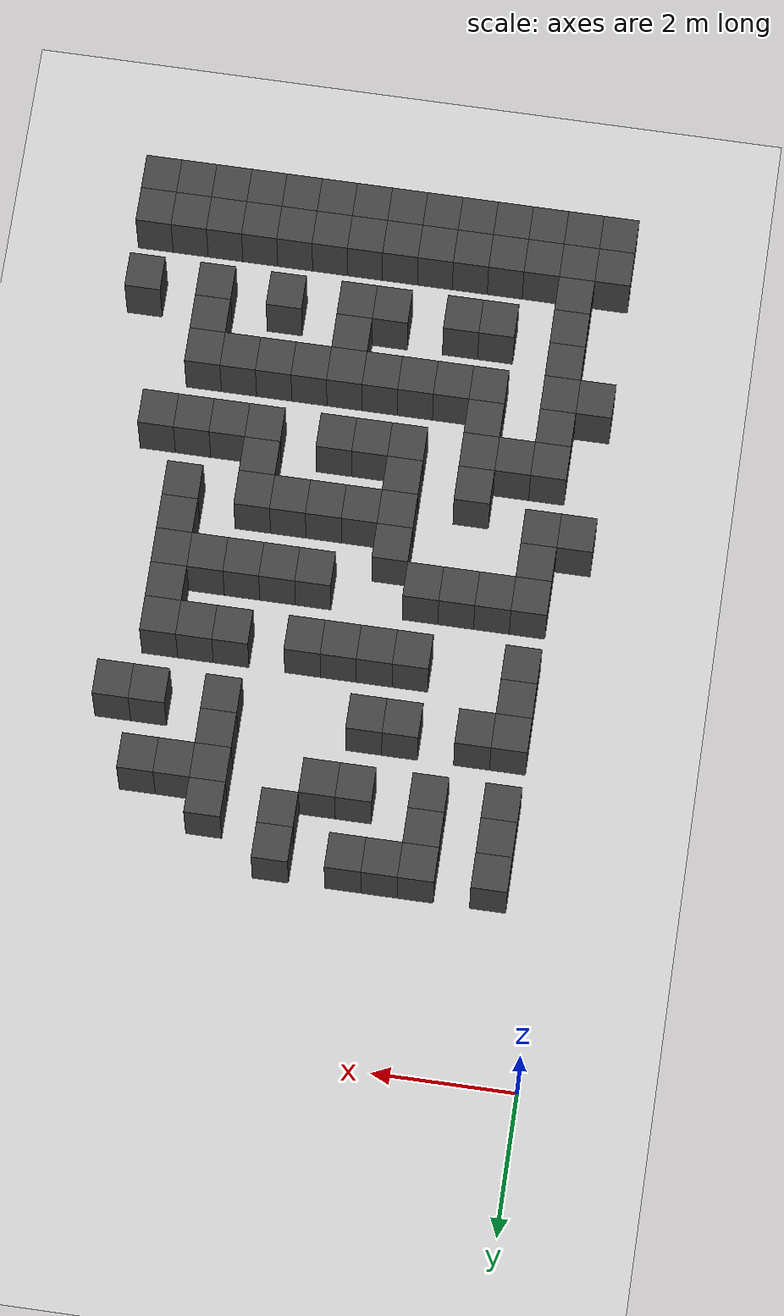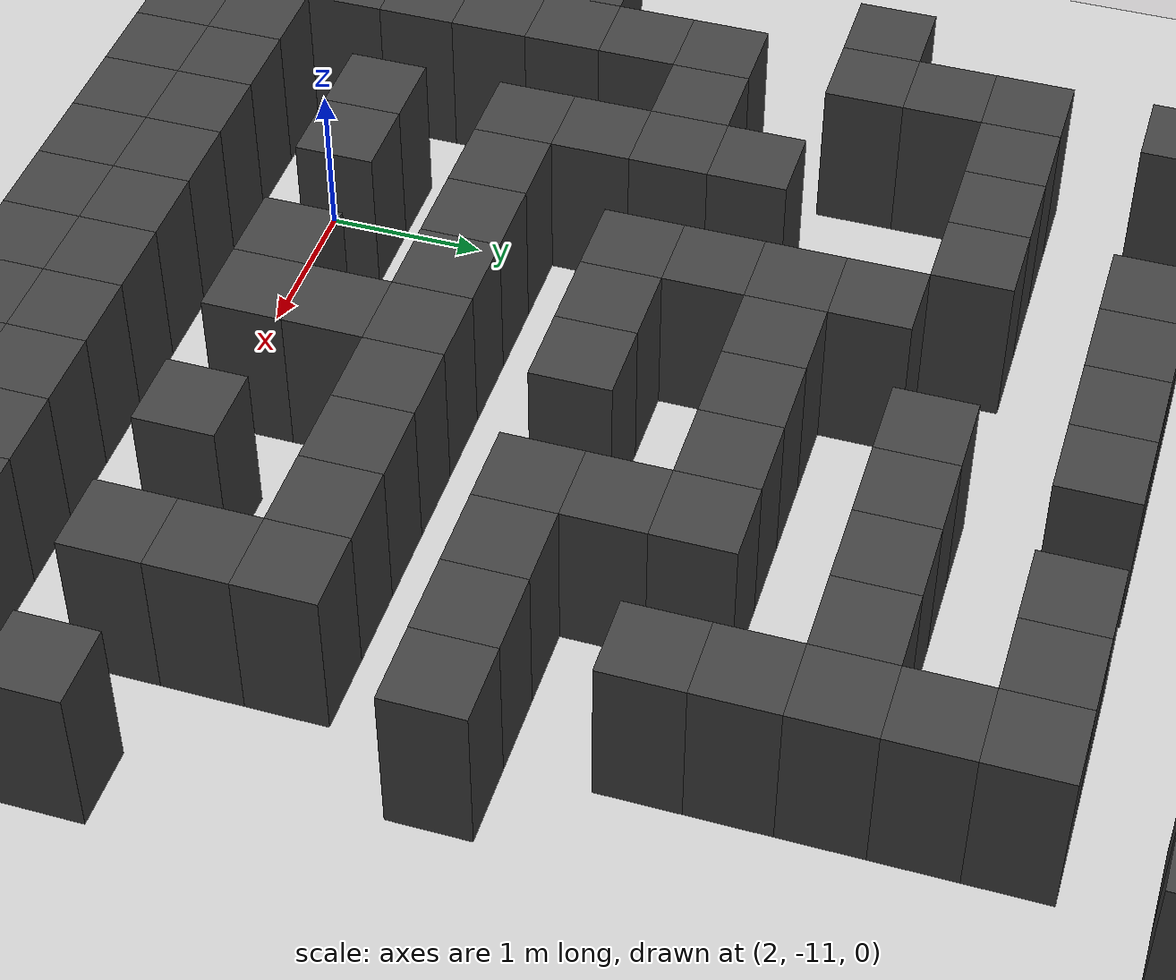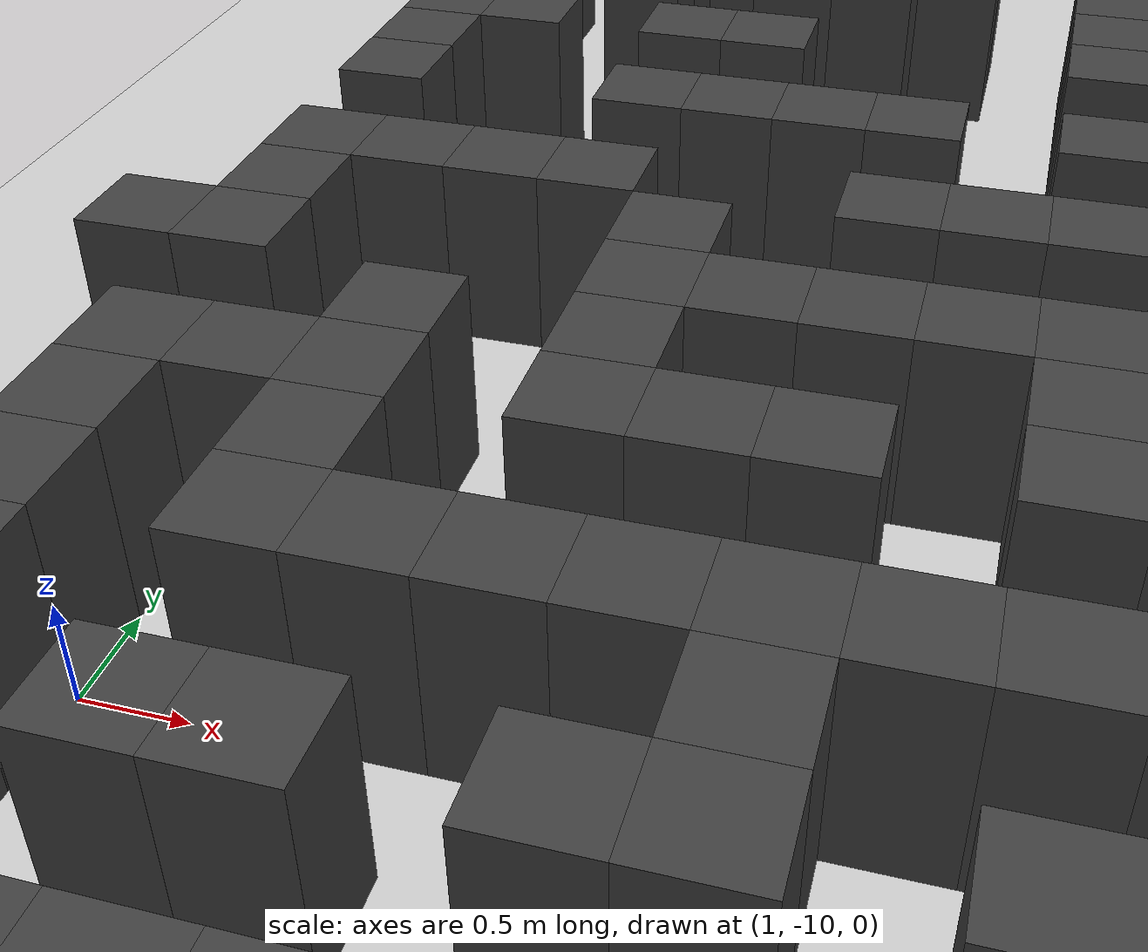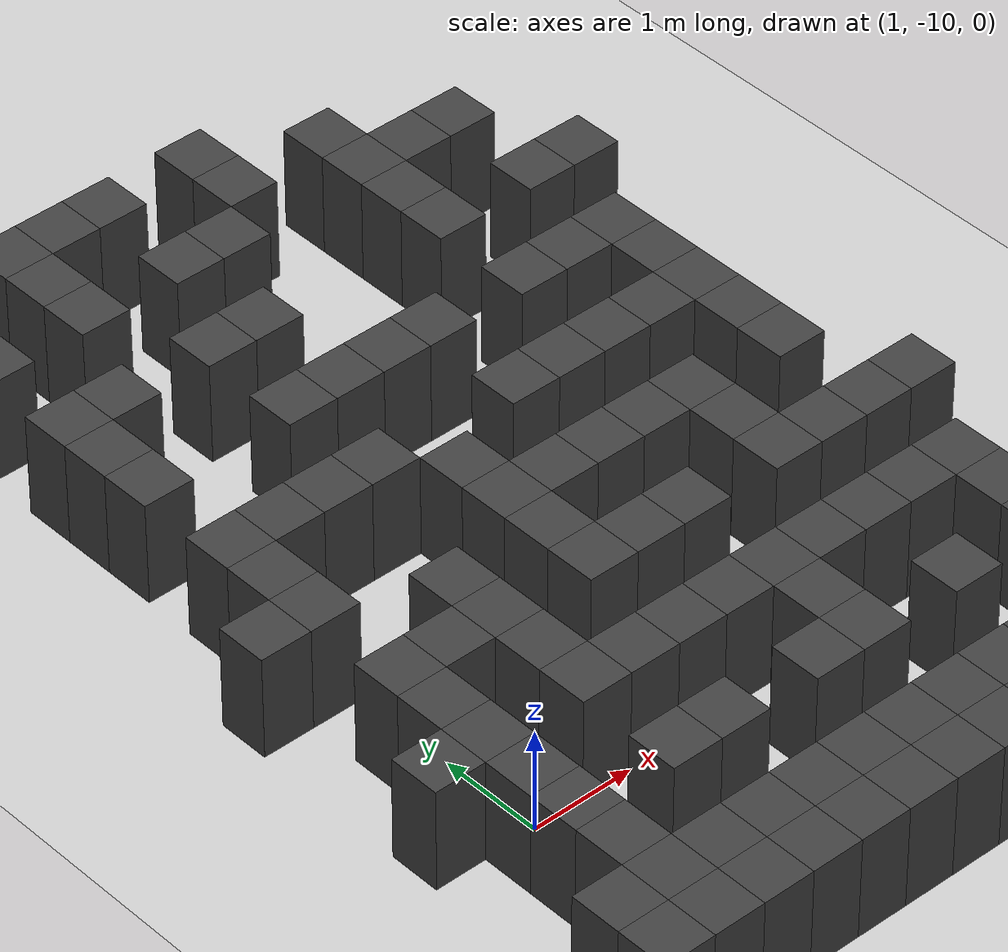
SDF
<sdf version="1.7">
 <world name="map_15168">
  <model name="ground_plane">
   <static>true</static>
   <link name="link">
    <collision name="collision">
     <geometry><plane><normal>0 0 1</normal><size>200 200</size></plane></geometry>
    </collision>
    <visual name="visual">
     <geometry><plane><normal>0 0 1</normal><size>200 200</size></plane></geometry>
     <material><ambient>0.8 0.8 0.8 1</ambient><diffuse>0.8 0.8 0.8 1</diffuse></material>
    </visual>
   </link>
  </model>
  <model name="maze_environment">
   <static>true</static>
   <link name="wall_719">
    <pose>0.750 -2.750 0.500 0 0 0</pose>
    <collision name="col"><geometry><box><size>0.5 0.5 1.0</size></box></geometry></collision>
    <visual name="vis">
     <geometry><box><size>0.5 0.5 1.0</size></box></geometry>
     <material><ambient>0.15 0.15 0.15 1</ambient><diffuse>0.25 0.25 0.25 1</diffuse></material>
    </visual>
   </link>
   <link name="wall_720">
    <pose>1.750 -2.750 0.500 0 0 0</pose>
    <collision name="col"><geometry><box><size>0.5 0.5 1.0</size></box></geometry></collision>
    <visual name="vis">
     <geometry><box><size>0.5 0.5 1.0</size></box></geometry>
     <material><ambient>0.15 0.15 0.15 1</ambient><diffuse>0.25 0.25 0.25 1</diffuse></material>
    </visual>
   </link>
   <link name="wall_721">
    <pose>2.250 -2.750 0.500 0 0 0</pose>
    <collision name="col"><geometry><box><size>0.5 0.5 1.0</size></box></geometry></collision>
    <visual name="vis">
     <geometry><box><size>0.5 0.5 1.0</size></box></geometry>
     <material><ambient>0.15 0.15 0.15 1</ambient><diffuse>0.25 0.25 0.25 1</diffuse></material>
    </visual>
   </link>
   <link name="wall_722">
    <pose>2.750 -2.750 0.500 0 0 0</pose>
    <collision name="col"><geometry><box><size>0.5 0.5 1.0</size></box></geometry></collision>
    <visual name="vis">
     <geometry><box><size>0.5 0.5 1.0</size></box></geometry>
     <material><ambient>0.15 0.15 0.15 1</ambient><diffuse>0.25 0.25 0.25 1</diffuse></material>
    </visual>
   </link>
   <link name="wall_723">
    <pose>3.750 -2.750 0.500 0 0 0</pose>
    <collision name="col"><geometry><box><size>0.5 0.5 1.0</size></box></geometry></collision>
    <visual name="vis">
     <geometry><box><size>0.5 0.5 1.0</size></box></geometry>
     <material><ambient>0.15 0.15 0.15 1</ambient><diffuse>0.25 0.25 0.25 1</diffuse></material>
    </visual>
   </link>
   <link name="wall_739">
    <pose>0.750 -3.250 0.500 0 0 0</pose>
    <collision name="col"><geometry><box><size>0.5 0.5 1.0</size></box></geometry></collision>
    <visual name="vis">
     <geometry><box><size>0.5 0.5 1.0</size></box></geometry>
     <material><ambient>0.15 0.15 0.15 1</ambient><diffuse>0.25 0.25 0.25 1</diffuse></material>
    </visual>
   </link>
   <link name="wall_740">
    <pose>1.750 -3.250 0.500 0 0 0</pose>
    <collision name="col"><geometry><box><size>0.5 0.5 1.0</size></box></geometry></collision>
    <visual name="vis">
     <geometry><box><size>0.5 0.5 1.0</size></box></geometry>
     <material><ambient>0.15 0.15 0.15 1</ambient><diffuse>0.25 0.25 0.25 1</diffuse></material>
    </visual>
   </link>
   <link name="wall_741">
    <pose>3.750 -3.250 0.500 0 0 0</pose>
    <collision name="col"><geometry><box><size>0.5 0.5 1.0</size></box></geometry></collision>
    <visual name="vis">
     <geometry><box><size>0.5 0.5 1.0</size></box></geometry>
     <material><ambient>0.15 0.15 0.15 1</ambient><diffuse>0.25 0.25 0.25 1</diffuse></material>
    </visual>
   </link>
   <link name="wall_742">
    <pose>4.750 -3.250 0.500 0 0 0</pose>
    <collision name="col"><geometry><box><size>0.5 0.5 1.0</size></box></geometry></collision>
    <visual name="vis">
     <geometry><box><size>0.5 0.5 1.0</size></box></geometry>
     <material><ambient>0.15 0.15 0.15 1</ambient><diffuse>0.25 0.25 0.25 1</diffuse></material>
    </visual>
   </link>
   <link name="wall_760">
    <pose>0.750 -3.750 0.500 0 0 0</pose>
    <collision name="col"><geometry><box><size>0.5 0.5 1.0</size></box></geometry></collision>
    <visual name="vis">
     <geometry><box><size>0.5 0.5 1.0</size></box></geometry>
     <material><ambient>0.15 0.15 0.15 1</ambient><diffuse>0.25 0.25 0.25 1</diffuse></material>
    </visual>
   </link>
   <link name="wall_761">
    <pose>1.750 -3.750 0.500 0 0 0</pose>
    <collision name="col"><geometry><box><size>0.5 0.5 1.0</size></box></geometry></collision>
    <visual name="vis">
     <geometry><box><size>0.5 0.5 1.0</size></box></geometry>
     <material><ambient>0.15 0.15 0.15 1</ambient><diffuse>0.25 0.25 0.25 1</diffuse></material>
    </visual>
   </link>
   <link name="wall_762">
    <pose>2.750 -3.750 0.500 0 0 0</pose>
    <collision name="col"><geometry><box><size>0.5 0.5 1.0</size></box></geometry></collision>
    <visual name="vis">
     <geometry><box><size>0.5 0.5 1.0</size></box></geometry>
     <material><ambient>0.15 0.15 0.15 1</ambient><diffuse>0.25 0.25 0.25 1</diffuse></material>
    </visual>
   </link>
   <link name="wall_763">
    <pose>3.250 -3.750 0.500 0 0 0</pose>
    <collision name="col"><geometry><box><size>0.5 0.5 1.0</size></box></geometry></collision>
    <visual name="vis">
     <geometry><box><size>0.5 0.5 1.0</size></box></geometry>
     <material><ambient>0.15 0.15 0.15 1</ambient><diffuse>0.25 0.25 0.25 1</diffuse></material>
    </visual>
   </link>
   <link name="wall_764">
    <pose>4.750 -3.750 0.500 0 0 0</pose>
    <collision name="col"><geometry><box><size>0.5 0.5 1.0</size></box></geometry></collision>
    <visual name="vis">
     <geometry><box><size>0.5 0.5 1.0</size></box></geometry>
     <material><ambient>0.15 0.15 0.15 1</ambient><diffuse>0.25 0.25 0.25 1</diffuse></material>
    </visual>
   </link>
   <link name="wall_765">
    <pose>5.250 -3.750 0.500 0 0 0</pose>
    <collision name="col"><geometry><box><size>0.5 0.5 1.0</size></box></geometry></collision>
    <visual name="vis">
     <geometry><box><size>0.5 0.5 1.0</size></box></geometry>
     <material><ambient>0.15 0.15 0.15 1</ambient><diffuse>0.25 0.25 0.25 1</diffuse></material>
    </visual>
   </link>
   <link name="wall_766">
    <pose>5.750 -3.750 0.500 0 0 0</pose>
    <collision name="col"><geometry><box><size>0.5 0.5 1.0</size></box></geometry></collision>
    <visual name="vis">
     <geometry><box><size>0.5 0.5 1.0</size></box></geometry>
     <material><ambient>0.15 0.15 0.15 1</ambient><diffuse>0.25 0.25 0.25 1</diffuse></material>
    </visual>
   </link>
   <link name="wall_779">
    <pose>4.750 -4.250 0.500 0 0 0</pose>
    <collision name="col"><geometry><box><size>0.5 0.5 1.0</size></box></geometry></collision>
    <visual name="vis">
     <geometry><box><size>0.5 0.5 1.0</size></box></geometry>
     <material><ambient>0.15 0.15 0.15 1</ambient><diffuse>0.25 0.25 0.25 1</diffuse></material>
    </visual>
   </link>
   <link name="wall_802">
    <pose>0.750 -4.750 0.500 0 0 0</pose>
    <collision name="col"><geometry><box><size>0.5 0.5 1.0</size></box></geometry></collision>
    <visual name="vis">
     <geometry><box><size>0.5 0.5 1.0</size></box></geometry>
     <material><ambient>0.15 0.15 0.15 1</ambient><diffuse>0.25 0.25 0.25 1</diffuse></material>
    </visual>
   </link>
   <link name="wall_803">
    <pose>1.250 -4.750 0.500 0 0 0</pose>
    <collision name="col"><geometry><box><size>0.5 0.5 1.0</size></box></geometry></collision>
    <visual name="vis">
     <geometry><box><size>0.5 0.5 1.0</size></box></geometry>
     <material><ambient>0.15 0.15 0.15 1</ambient><diffuse>0.25 0.25 0.25 1</diffuse></material>
    </visual>
   </link>
   <link name="wall_804">
    <pose>2.250 -4.750 0.500 0 0 0</pose>
    <collision name="col"><geometry><box><size>0.5 0.5 1.0</size></box></geometry></collision>
    <visual name="vis">
     <geometry><box><size>0.5 0.5 1.0</size></box></geometry>
     <material><ambient>0.15 0.15 0.15 1</ambient><diffuse>0.25 0.25 0.25 1</diffuse></material>
    </visual>
   </link>
   <link name="wall_805">
    <pose>2.750 -4.750 0.500 0 0 0</pose>
    <collision name="col"><geometry><box><size>0.5 0.5 1.0</size></box></geometry></collision>
    <visual name="vis">
     <geometry><box><size>0.5 0.5 1.0</size></box></geometry>
     <material><ambient>0.15 0.15 0.15 1</ambient><diffuse>0.25 0.25 0.25 1</diffuse></material>
    </visual>
   </link>
   <link name="wall_806">
    <pose>4.750 -4.750 0.500 0 0 0</pose>
    <collision name="col"><geometry><box><size>0.5 0.5 1.0</size></box></geometry></collision>
    <visual name="vis">
     <geometry><box><size>0.5 0.5 1.0</size></box></geometry>
     <material><ambient>0.15 0.15 0.15 1</ambient><diffuse>0.25 0.25 0.25 1</diffuse></material>
    </visual>
   </link>
   <link name="wall_807">
    <pose>5.750 -4.750 0.500 0 0 0</pose>
    <collision name="col"><geometry><box><size>0.5 0.5 1.0</size></box></geometry></collision>
    <visual name="vis">
     <geometry><box><size>0.5 0.5 1.0</size></box></geometry>
     <material><ambient>0.15 0.15 0.15 1</ambient><diffuse>0.25 0.25 0.25 1</diffuse></material>
    </visual>
   </link>
   <link name="wall_808">
    <pose>6.250 -4.750 0.500 0 0 0</pose>
    <collision name="col"><geometry><box><size>0.5 0.5 1.0</size></box></geometry></collision>
    <visual name="vis">
     <geometry><box><size>0.5 0.5 1.0</size></box></geometry>
     <material><ambient>0.15 0.15 0.15 1</ambient><diffuse>0.25 0.25 0.25 1</diffuse></material>
    </visual>
   </link>
   <link name="wall_823">
    <pose>0.750 -5.250 0.500 0 0 0</pose>
    <collision name="col"><geometry><box><size>0.5 0.5 1.0</size></box></geometry></collision>
    <visual name="vis">
     <geometry><box><size>0.5 0.5 1.0</size></box></geometry>
     <material><ambient>0.15 0.15 0.15 1</ambient><diffuse>0.25 0.25 0.25 1</diffuse></material>
    </visual>
   </link>
   <link name="wall_847">
    <pose>0.750 -5.750 0.500 0 0 0</pose>
    <collision name="col"><geometry><box><size>0.5 0.5 1.0</size></box></geometry></collision>
    <visual name="vis">
     <geometry><box><size>0.5 0.5 1.0</size></box></geometry>
     <material><ambient>0.15 0.15 0.15 1</ambient><diffuse>0.25 0.25 0.25 1</diffuse></material>
    </visual>
   </link>
   <link name="wall_848">
    <pose>2.250 -5.750 0.500 0 0 0</pose>
    <collision name="col"><geometry><box><size>0.5 0.5 1.0</size></box></geometry></collision>
    <visual name="vis">
     <geometry><box><size>0.5 0.5 1.0</size></box></geometry>
     <material><ambient>0.15 0.15 0.15 1</ambient><diffuse>0.25 0.25 0.25 1</diffuse></material>
    </visual>
   </link>
   <link name="wall_849">
    <pose>2.750 -5.750 0.500 0 0 0</pose>
    <collision name="col"><geometry><box><size>0.5 0.5 1.0</size></box></geometry></collision>
    <visual name="vis">
     <geometry><box><size>0.5 0.5 1.0</size></box></geometry>
     <material><ambient>0.15 0.15 0.15 1</ambient><diffuse>0.25 0.25 0.25 1</diffuse></material>
    </visual>
   </link>
   <link name="wall_850">
    <pose>3.250 -5.750 0.500 0 0 0</pose>
    <collision name="col"><geometry><box><size>0.5 0.5 1.0</size></box></geometry></collision>
    <visual name="vis">
     <geometry><box><size>0.5 0.5 1.0</size></box></geometry>
     <material><ambient>0.15 0.15 0.15 1</ambient><diffuse>0.25 0.25 0.25 1</diffuse></material>
    </visual>
   </link>
   <link name="wall_851">
    <pose>3.750 -5.750 0.500 0 0 0</pose>
    <collision name="col"><geometry><box><size>0.5 0.5 1.0</size></box></geometry></collision>
    <visual name="vis">
     <geometry><box><size>0.5 0.5 1.0</size></box></geometry>
     <material><ambient>0.15 0.15 0.15 1</ambient><diffuse>0.25 0.25 0.25 1</diffuse></material>
    </visual>
   </link>
   <link name="wall_852">
    <pose>4.750 -5.750 0.500 0 0 0</pose>
    <collision name="col"><geometry><box><size>0.5 0.5 1.0</size></box></geometry></collision>
    <visual name="vis">
     <geometry><box><size>0.5 0.5 1.0</size></box></geometry>
     <material><ambient>0.15 0.15 0.15 1</ambient><diffuse>0.25 0.25 0.25 1</diffuse></material>
    </visual>
   </link>
   <link name="wall_853">
    <pose>5.250 -5.750 0.500 0 0 0</pose>
    <collision name="col"><geometry><box><size>0.5 0.5 1.0</size></box></geometry></collision>
    <visual name="vis">
     <geometry><box><size>0.5 0.5 1.0</size></box></geometry>
     <material><ambient>0.15 0.15 0.15 1</ambient><diffuse>0.25 0.25 0.25 1</diffuse></material>
    </visual>
   </link>
   <link name="wall_854">
    <pose>5.750 -5.750 0.500 0 0 0</pose>
    <collision name="col"><geometry><box><size>0.5 0.5 1.0</size></box></geometry></collision>
    <visual name="vis">
     <geometry><box><size>0.5 0.5 1.0</size></box></geometry>
     <material><ambient>0.15 0.15 0.15 1</ambient><diffuse>0.25 0.25 0.25 1</diffuse></material>
    </visual>
   </link>
   <link name="wall_868">
    <pose>5.750 -6.250 0.500 0 0 0</pose>
    <collision name="col"><geometry><box><size>0.5 0.5 1.0</size></box></geometry></collision>
    <visual name="vis">
     <geometry><box><size>0.5 0.5 1.0</size></box></geometry>
     <material><ambient>0.15 0.15 0.15 1</ambient><diffuse>0.25 0.25 0.25 1</diffuse></material>
    </visual>
   </link>
   <link name="wall_894">
    <pose>0.750 -6.750 0.500 0 0 0</pose>
    <collision name="col"><geometry><box><size>0.5 0.5 1.0</size></box></geometry></collision>
    <visual name="vis">
     <geometry><box><size>0.5 0.5 1.0</size></box></geometry>
     <material><ambient>0.15 0.15 0.15 1</ambient><diffuse>0.25 0.25 0.25 1</diffuse></material>
    </visual>
   </link>
   <link name="wall_895">
    <pose>1.250 -6.750 0.500 0 0 0</pose>
    <collision name="col"><geometry><box><size>0.5 0.5 1.0</size></box></geometry></collision>
    <visual name="vis">
     <geometry><box><size>0.5 0.5 1.0</size></box></geometry>
     <material><ambient>0.15 0.15 0.15 1</ambient><diffuse>0.25 0.25 0.25 1</diffuse></material>
    </visual>
   </link>
   <link name="wall_896">
    <pose>1.750 -6.750 0.500 0 0 0</pose>
    <collision name="col"><geometry><box><size>0.5 0.5 1.0</size></box></geometry></collision>
    <visual name="vis">
     <geometry><box><size>0.5 0.5 1.0</size></box></geometry>
     <material><ambient>0.15 0.15 0.15 1</ambient><diffuse>0.25 0.25 0.25 1</diffuse></material>
    </visual>
   </link>
   <link name="wall_897">
    <pose>2.250 -6.750 0.500 0 0 0</pose>
    <collision name="col"><geometry><box><size>0.5 0.5 1.0</size></box></geometry></collision>
    <visual name="vis">
     <geometry><box><size>0.5 0.5 1.0</size></box></geometry>
     <material><ambient>0.15 0.15 0.15 1</ambient><diffuse>0.25 0.25 0.25 1</diffuse></material>
    </visual>
   </link>
   <link name="wall_898">
    <pose>3.750 -6.750 0.500 0 0 0</pose>
    <collision name="col"><geometry><box><size>0.5 0.5 1.0</size></box></geometry></collision>
    <visual name="vis">
     <geometry><box><size>0.5 0.5 1.0</size></box></geometry>
     <material><ambient>0.15 0.15 0.15 1</ambient><diffuse>0.25 0.25 0.25 1</diffuse></material>
    </visual>
   </link>
   <link name="wall_899">
    <pose>4.250 -6.750 0.500 0 0 0</pose>
    <collision name="col"><geometry><box><size>0.5 0.5 1.0</size></box></geometry></collision>
    <visual name="vis">
     <geometry><box><size>0.5 0.5 1.0</size></box></geometry>
     <material><ambient>0.15 0.15 0.15 1</ambient><diffuse>0.25 0.25 0.25 1</diffuse></material>
    </visual>
   </link>
   <link name="wall_900">
    <pose>4.750 -6.750 0.500 0 0 0</pose>
    <collision name="col"><geometry><box><size>0.5 0.5 1.0</size></box></geometry></collision>
    <visual name="vis">
     <geometry><box><size>0.5 0.5 1.0</size></box></geometry>
     <material><ambient>0.15 0.15 0.15 1</ambient><diffuse>0.25 0.25 0.25 1</diffuse></material>
    </visual>
   </link>
   <link name="wall_901">
    <pose>5.250 -6.750 0.500 0 0 0</pose>
    <collision name="col"><geometry><box><size>0.5 0.5 1.0</size></box></geometry></collision>
    <visual name="vis">
     <geometry><box><size>0.5 0.5 1.0</size></box></geometry>
     <material><ambient>0.15 0.15 0.15 1</ambient><diffuse>0.25 0.25 0.25 1</diffuse></material>
    </visual>
   </link>
   <link name="wall_902">
    <pose>5.750 -6.750 0.500 0 0 0</pose>
    <collision name="col"><geometry><box><size>0.5 0.5 1.0</size></box></geometry></collision>
    <visual name="vis">
     <geometry><box><size>0.5 0.5 1.0</size></box></geometry>
     <material><ambient>0.15 0.15 0.15 1</ambient><diffuse>0.25 0.25 0.25 1</diffuse></material>
    </visual>
   </link>
   <link name="wall_917">
    <pose>0.750 -7.250 0.500 0 0 0</pose>
    <collision name="col"><geometry><box><size>0.5 0.5 1.0</size></box></geometry></collision>
    <visual name="vis">
     <geometry><box><size>0.5 0.5 1.0</size></box></geometry>
     <material><ambient>0.15 0.15 0.15 1</ambient><diffuse>0.25 0.25 0.25 1</diffuse></material>
    </visual>
   </link>
   <link name="wall_918">
    <pose>2.750 -7.250 0.500 0 0 0</pose>
    <collision name="col"><geometry><box><size>0.5 0.5 1.0</size></box></geometry></collision>
    <visual name="vis">
     <geometry><box><size>0.5 0.5 1.0</size></box></geometry>
     <material><ambient>0.15 0.15 0.15 1</ambient><diffuse>0.25 0.25 0.25 1</diffuse></material>
    </visual>
   </link>
   <link name="wall_919">
    <pose>5.750 -7.250 0.500 0 0 0</pose>
    <collision name="col"><geometry><box><size>0.5 0.5 1.0</size></box></geometry></collision>
    <visual name="vis">
     <geometry><box><size>0.5 0.5 1.0</size></box></geometry>
     <material><ambient>0.15 0.15 0.15 1</ambient><diffuse>0.25 0.25 0.25 1</diffuse></material>
    </visual>
   </link>
   <link name="wall_938">
    <pose>0.250 -7.750 0.500 0 0 0</pose>
    <collision name="col"><geometry><box><size>0.5 0.5 1.0</size></box></geometry></collision>
    <visual name="vis">
     <geometry><box><size>0.5 0.5 1.0</size></box></geometry>
     <material><ambient>0.15 0.15 0.15 1</ambient><diffuse>0.25 0.25 0.25 1</diffuse></material>
    </visual>
   </link>
   <link name="wall_939">
    <pose>0.750 -7.750 0.500 0 0 0</pose>
    <collision name="col"><geometry><box><size>0.5 0.5 1.0</size></box></geometry></collision>
    <visual name="vis">
     <geometry><box><size>0.5 0.5 1.0</size></box></geometry>
     <material><ambient>0.15 0.15 0.15 1</ambient><diffuse>0.25 0.25 0.25 1</diffuse></material>
    </visual>
   </link>
   <link name="wall_940">
    <pose>2.750 -7.750 0.500 0 0 0</pose>
    <collision name="col"><geometry><box><size>0.5 0.5 1.0</size></box></geometry></collision>
    <visual name="vis">
     <geometry><box><size>0.5 0.5 1.0</size></box></geometry>
     <material><ambient>0.15 0.15 0.15 1</ambient><diffuse>0.25 0.25 0.25 1</diffuse></material>
    </visual>
   </link>
   <link name="wall_941">
    <pose>3.250 -7.750 0.500 0 0 0</pose>
    <collision name="col"><geometry><box><size>0.5 0.5 1.0</size></box></geometry></collision>
    <visual name="vis">
     <geometry><box><size>0.5 0.5 1.0</size></box></geometry>
     <material><ambient>0.15 0.15 0.15 1</ambient><diffuse>0.25 0.25 0.25 1</diffuse></material>
    </visual>
   </link>
   <link name="wall_942">
    <pose>3.750 -7.750 0.500 0 0 0</pose>
    <collision name="col"><geometry><box><size>0.5 0.5 1.0</size></box></geometry></collision>
    <visual name="vis">
     <geometry><box><size>0.5 0.5 1.0</size></box></geometry>
     <material><ambient>0.15 0.15 0.15 1</ambient><diffuse>0.25 0.25 0.25 1</diffuse></material>
    </visual>
   </link>
   <link name="wall_943">
    <pose>4.250 -7.750 0.500 0 0 0</pose>
    <collision name="col"><geometry><box><size>0.5 0.5 1.0</size></box></geometry></collision>
    <visual name="vis">
     <geometry><box><size>0.5 0.5 1.0</size></box></geometry>
     <material><ambient>0.15 0.15 0.15 1</ambient><diffuse>0.25 0.25 0.25 1</diffuse></material>
    </visual>
   </link>
   <link name="wall_944">
    <pose>4.750 -7.750 0.500 0 0 0</pose>
    <collision name="col"><geometry><box><size>0.5 0.5 1.0</size></box></geometry></collision>
    <visual name="vis">
     <geometry><box><size>0.5 0.5 1.0</size></box></geometry>
     <material><ambient>0.15 0.15 0.15 1</ambient><diffuse>0.25 0.25 0.25 1</diffuse></material>
    </visual>
   </link>
   <link name="wall_945">
    <pose>5.750 -7.750 0.500 0 0 0</pose>
    <collision name="col"><geometry><box><size>0.5 0.5 1.0</size></box></geometry></collision>
    <visual name="vis">
     <geometry><box><size>0.5 0.5 1.0</size></box></geometry>
     <material><ambient>0.15 0.15 0.15 1</ambient><diffuse>0.25 0.25 0.25 1</diffuse></material>
    </visual>
   </link>
   <link name="wall_961">
    <pose>1.750 -8.250 0.500 0 0 0</pose>
    <collision name="col"><geometry><box><size>0.5 0.5 1.0</size></box></geometry></collision>
    <visual name="vis">
     <geometry><box><size>0.5 0.5 1.0</size></box></geometry>
     <material><ambient>0.15 0.15 0.15 1</ambient><diffuse>0.25 0.25 0.25 1</diffuse></material>
    </visual>
   </link>
   <link name="wall_962">
    <pose>2.750 -8.250 0.500 0 0 0</pose>
    <collision name="col"><geometry><box><size>0.5 0.5 1.0</size></box></geometry></collision>
    <visual name="vis">
     <geometry><box><size>0.5 0.5 1.0</size></box></geometry>
     <material><ambient>0.15 0.15 0.15 1</ambient><diffuse>0.25 0.25 0.25 1</diffuse></material>
    </visual>
   </link>
   <link name="wall_963">
    <pose>4.750 -8.250 0.500 0 0 0</pose>
    <collision name="col"><geometry><box><size>0.5 0.5 1.0</size></box></geometry></collision>
    <visual name="vis">
     <geometry><box><size>0.5 0.5 1.0</size></box></geometry>
     <material><ambient>0.15 0.15 0.15 1</ambient><diffuse>0.25 0.25 0.25 1</diffuse></material>
    </visual>
   </link>
   <link name="wall_986">
    <pose>0.750 -8.750 0.500 0 0 0</pose>
    <collision name="col"><geometry><box><size>0.5 0.5 1.0</size></box></geometry></collision>
    <visual name="vis">
     <geometry><box><size>0.5 0.5 1.0</size></box></geometry>
     <material><ambient>0.15 0.15 0.15 1</ambient><diffuse>0.25 0.25 0.25 1</diffuse></material>
    </visual>
   </link>
   <link name="wall_987">
    <pose>1.250 -8.750 0.500 0 0 0</pose>
    <collision name="col"><geometry><box><size>0.5 0.5 1.0</size></box></geometry></collision>
    <visual name="vis">
     <geometry><box><size>0.5 0.5 1.0</size></box></geometry>
     <material><ambient>0.15 0.15 0.15 1</ambient><diffuse>0.25 0.25 0.25 1</diffuse></material>
    </visual>
   </link>
   <link name="wall_988">
    <pose>1.750 -8.750 0.500 0 0 0</pose>
    <collision name="col"><geometry><box><size>0.5 0.5 1.0</size></box></geometry></collision>
    <visual name="vis">
     <geometry><box><size>0.5 0.5 1.0</size></box></geometry>
     <material><ambient>0.15 0.15 0.15 1</ambient><diffuse>0.25 0.25 0.25 1</diffuse></material>
    </visual>
   </link>
   <link name="wall_989">
    <pose>2.750 -8.750 0.500 0 0 0</pose>
    <collision name="col"><geometry><box><size>0.5 0.5 1.0</size></box></geometry></collision>
    <visual name="vis">
     <geometry><box><size>0.5 0.5 1.0</size></box></geometry>
     <material><ambient>0.15 0.15 0.15 1</ambient><diffuse>0.25 0.25 0.25 1</diffuse></material>
    </visual>
   </link>
   <link name="wall_990">
    <pose>3.250 -8.750 0.500 0 0 0</pose>
    <collision name="col"><geometry><box><size>0.5 0.5 1.0</size></box></geometry></collision>
    <visual name="vis">
     <geometry><box><size>0.5 0.5 1.0</size></box></geometry>
     <material><ambient>0.15 0.15 0.15 1</ambient><diffuse>0.25 0.25 0.25 1</diffuse></material>
    </visual>
   </link>
   <link name="wall_991">
    <pose>3.750 -8.750 0.500 0 0 0</pose>
    <collision name="col"><geometry><box><size>0.5 0.5 1.0</size></box></geometry></collision>
    <visual name="vis">
     <geometry><box><size>0.5 0.5 1.0</size></box></geometry>
     <material><ambient>0.15 0.15 0.15 1</ambient><diffuse>0.25 0.25 0.25 1</diffuse></material>
    </visual>
   </link>
   <link name="wall_992">
    <pose>4.750 -8.750 0.500 0 0 0</pose>
    <collision name="col"><geometry><box><size>0.5 0.5 1.0</size></box></geometry></collision>
    <visual name="vis">
     <geometry><box><size>0.5 0.5 1.0</size></box></geometry>
     <material><ambient>0.15 0.15 0.15 1</ambient><diffuse>0.25 0.25 0.25 1</diffuse></material>
    </visual>
   </link>
   <link name="wall_993">
    <pose>5.250 -8.750 0.500 0 0 0</pose>
    <collision name="col"><geometry><box><size>0.5 0.5 1.0</size></box></geometry></collision>
    <visual name="vis">
     <geometry><box><size>0.5 0.5 1.0</size></box></geometry>
     <material><ambient>0.15 0.15 0.15 1</ambient><diffuse>0.25 0.25 0.25 1</diffuse></material>
    </visual>
   </link>
   <link name="wall_994">
    <pose>5.750 -8.750 0.500 0 0 0</pose>
    <collision name="col"><geometry><box><size>0.5 0.5 1.0</size></box></geometry></collision>
    <visual name="vis">
     <geometry><box><size>0.5 0.5 1.0</size></box></geometry>
     <material><ambient>0.15 0.15 0.15 1</ambient><diffuse>0.25 0.25 0.25 1</diffuse></material>
    </visual>
   </link>
   <link name="wall_995">
    <pose>6.250 -8.750 0.500 0 0 0</pose>
    <collision name="col"><geometry><box><size>0.5 0.5 1.0</size></box></geometry></collision>
    <visual name="vis">
     <geometry><box><size>0.5 0.5 1.0</size></box></geometry>
     <material><ambient>0.15 0.15 0.15 1</ambient><diffuse>0.25 0.25 0.25 1</diffuse></material>
    </visual>
   </link>
   <link name="wall_1009">
    <pose>0.750 -9.250 0.500 0 0 0</pose>
    <collision name="col"><geometry><box><size>0.5 0.5 1.0</size></box></geometry></collision>
    <visual name="vis">
     <geometry><box><size>0.5 0.5 1.0</size></box></geometry>
     <material><ambient>0.15 0.15 0.15 1</ambient><diffuse>0.25 0.25 0.25 1</diffuse></material>
    </visual>
   </link>
   <link name="wall_1010">
    <pose>1.750 -9.250 0.500 0 0 0</pose>
    <collision name="col"><geometry><box><size>0.5 0.5 1.0</size></box></geometry></collision>
    <visual name="vis">
     <geometry><box><size>0.5 0.5 1.0</size></box></geometry>
     <material><ambient>0.15 0.15 0.15 1</ambient><diffuse>0.25 0.25 0.25 1</diffuse></material>
    </visual>
   </link>
   <link name="wall_1031">
    <pose>0.250 -9.750 0.500 0 0 0</pose>
    <collision name="col"><geometry><box><size>0.5 0.5 1.0</size></box></geometry></collision>
    <visual name="vis">
     <geometry><box><size>0.5 0.5 1.0</size></box></geometry>
     <material><ambient>0.15 0.15 0.15 1</ambient><diffuse>0.25 0.25 0.25 1</diffuse></material>
    </visual>
   </link>
   <link name="wall_1032">
    <pose>0.750 -9.750 0.500 0 0 0</pose>
    <collision name="col"><geometry><box><size>0.5 0.5 1.0</size></box></geometry></collision>
    <visual name="vis">
     <geometry><box><size>0.5 0.5 1.0</size></box></geometry>
     <material><ambient>0.15 0.15 0.15 1</ambient><diffuse>0.25 0.25 0.25 1</diffuse></material>
    </visual>
   </link>
   <link name="wall_1033">
    <pose>1.750 -9.750 0.500 0 0 0</pose>
    <collision name="col"><geometry><box><size>0.5 0.5 1.0</size></box></geometry></collision>
    <visual name="vis">
     <geometry><box><size>0.5 0.5 1.0</size></box></geometry>
     <material><ambient>0.15 0.15 0.15 1</ambient><diffuse>0.25 0.25 0.25 1</diffuse></material>
    </visual>
   </link>
   <link name="wall_1034">
    <pose>2.250 -9.750 0.500 0 0 0</pose>
    <collision name="col"><geometry><box><size>0.5 0.5 1.0</size></box></geometry></collision>
    <visual name="vis">
     <geometry><box><size>0.5 0.5 1.0</size></box></geometry>
     <material><ambient>0.15 0.15 0.15 1</ambient><diffuse>0.25 0.25 0.25 1</diffuse></material>
    </visual>
   </link>
   <link name="wall_1035">
    <pose>2.750 -9.750 0.500 0 0 0</pose>
    <collision name="col"><geometry><box><size>0.5 0.5 1.0</size></box></geometry></collision>
    <visual name="vis">
     <geometry><box><size>0.5 0.5 1.0</size></box></geometry>
     <material><ambient>0.15 0.15 0.15 1</ambient><diffuse>0.25 0.25 0.25 1</diffuse></material>
    </visual>
   </link>
   <link name="wall_1036">
    <pose>3.250 -9.750 0.500 0 0 0</pose>
    <collision name="col"><geometry><box><size>0.5 0.5 1.0</size></box></geometry></collision>
    <visual name="vis">
     <geometry><box><size>0.5 0.5 1.0</size></box></geometry>
     <material><ambient>0.15 0.15 0.15 1</ambient><diffuse>0.25 0.25 0.25 1</diffuse></material>
    </visual>
   </link>
   <link name="wall_1037">
    <pose>3.750 -9.750 0.500 0 0 0</pose>
    <collision name="col"><geometry><box><size>0.5 0.5 1.0</size></box></geometry></collision>
    <visual name="vis">
     <geometry><box><size>0.5 0.5 1.0</size></box></geometry>
     <material><ambient>0.15 0.15 0.15 1</ambient><diffuse>0.25 0.25 0.25 1</diffuse></material>
    </visual>
   </link>
   <link name="wall_1038">
    <pose>4.250 -9.750 0.500 0 0 0</pose>
    <collision name="col"><geometry><box><size>0.5 0.5 1.0</size></box></geometry></collision>
    <visual name="vis">
     <geometry><box><size>0.5 0.5 1.0</size></box></geometry>
     <material><ambient>0.15 0.15 0.15 1</ambient><diffuse>0.25 0.25 0.25 1</diffuse></material>
    </visual>
   </link>
   <link name="wall_1039">
    <pose>4.750 -9.750 0.500 0 0 0</pose>
    <collision name="col"><geometry><box><size>0.5 0.5 1.0</size></box></geometry></collision>
    <visual name="vis">
     <geometry><box><size>0.5 0.5 1.0</size></box></geometry>
     <material><ambient>0.15 0.15 0.15 1</ambient><diffuse>0.25 0.25 0.25 1</diffuse></material>
    </visual>
   </link>
   <link name="wall_1040">
    <pose>5.250 -9.750 0.500 0 0 0</pose>
    <collision name="col"><geometry><box><size>0.5 0.5 1.0</size></box></geometry></collision>
    <visual name="vis">
     <geometry><box><size>0.5 0.5 1.0</size></box></geometry>
     <material><ambient>0.15 0.15 0.15 1</ambient><diffuse>0.25 0.25 0.25 1</diffuse></material>
    </visual>
   </link>
   <link name="wall_1041">
    <pose>5.750 -9.750 0.500 0 0 0</pose>
    <collision name="col"><geometry><box><size>0.5 0.5 1.0</size></box></geometry></collision>
    <visual name="vis">
     <geometry><box><size>0.5 0.5 1.0</size></box></geometry>
     <material><ambient>0.15 0.15 0.15 1</ambient><diffuse>0.25 0.25 0.25 1</diffuse></material>
    </visual>
   </link>
   <link name="wall_1054">
    <pose>0.750 -10.250 0.500 0 0 0</pose>
    <collision name="col"><geometry><box><size>0.5 0.5 1.0</size></box></geometry></collision>
    <visual name="vis">
     <geometry><box><size>0.5 0.5 1.0</size></box></geometry>
     <material><ambient>0.15 0.15 0.15 1</ambient><diffuse>0.25 0.25 0.25 1</diffuse></material>
    </visual>
   </link>
   <link name="wall_1055">
    <pose>3.750 -10.250 0.500 0 0 0</pose>
    <collision name="col"><geometry><box><size>0.5 0.5 1.0</size></box></geometry></collision>
    <visual name="vis">
     <geometry><box><size>0.5 0.5 1.0</size></box></geometry>
     <material><ambient>0.15 0.15 0.15 1</ambient><diffuse>0.25 0.25 0.25 1</diffuse></material>
    </visual>
   </link>
   <link name="wall_1056">
    <pose>5.750 -10.250 0.500 0 0 0</pose>
    <collision name="col"><geometry><box><size>0.5 0.5 1.0</size></box></geometry></collision>
    <visual name="vis">
     <geometry><box><size>0.5 0.5 1.0</size></box></geometry>
     <material><ambient>0.15 0.15 0.15 1</ambient><diffuse>0.25 0.25 0.25 1</diffuse></material>
    </visual>
   </link>
   <link name="wall_1082">
    <pose>0.750 -10.750 0.500 0 0 0</pose>
    <collision name="col"><geometry><box><size>0.5 0.5 1.0</size></box></geometry></collision>
    <visual name="vis">
     <geometry><box><size>0.5 0.5 1.0</size></box></geometry>
     <material><ambient>0.15 0.15 0.15 1</ambient><diffuse>0.25 0.25 0.25 1</diffuse></material>
    </visual>
   </link>
   <link name="wall_1083">
    <pose>1.750 -10.750 0.500 0 0 0</pose>
    <collision name="col"><geometry><box><size>0.5 0.5 1.0</size></box></geometry></collision>
    <visual name="vis">
     <geometry><box><size>0.5 0.5 1.0</size></box></geometry>
     <material><ambient>0.15 0.15 0.15 1</ambient><diffuse>0.25 0.25 0.25 1</diffuse></material>
    </visual>
   </link>
   <link name="wall_1084">
    <pose>2.250 -10.750 0.500 0 0 0</pose>
    <collision name="col"><geometry><box><size>0.5 0.5 1.0</size></box></geometry></collision>
    <visual name="vis">
     <geometry><box><size>0.5 0.5 1.0</size></box></geometry>
     <material><ambient>0.15 0.15 0.15 1</ambient><diffuse>0.25 0.25 0.25 1</diffuse></material>
    </visual>
   </link>
   <link name="wall_1085">
    <pose>3.250 -10.750 0.500 0 0 0</pose>
    <collision name="col"><geometry><box><size>0.5 0.5 1.0</size></box></geometry></collision>
    <visual name="vis">
     <geometry><box><size>0.5 0.5 1.0</size></box></geometry>
     <material><ambient>0.15 0.15 0.15 1</ambient><diffuse>0.25 0.25 0.25 1</diffuse></material>
    </visual>
   </link>
   <link name="wall_1086">
    <pose>3.750 -10.750 0.500 0 0 0</pose>
    <collision name="col"><geometry><box><size>0.5 0.5 1.0</size></box></geometry></collision>
    <visual name="vis">
     <geometry><box><size>0.5 0.5 1.0</size></box></geometry>
     <material><ambient>0.15 0.15 0.15 1</ambient><diffuse>0.25 0.25 0.25 1</diffuse></material>
    </visual>
   </link>
   <link name="wall_1087">
    <pose>4.750 -10.750 0.500 0 0 0</pose>
    <collision name="col"><geometry><box><size>0.5 0.5 1.0</size></box></geometry></collision>
    <visual name="vis">
     <geometry><box><size>0.5 0.5 1.0</size></box></geometry>
     <material><ambient>0.15 0.15 0.15 1</ambient><diffuse>0.25 0.25 0.25 1</diffuse></material>
    </visual>
   </link>
   <link name="wall_1088">
    <pose>5.750 -10.750 0.500 0 0 0</pose>
    <collision name="col"><geometry><box><size>0.5 0.5 1.0</size></box></geometry></collision>
    <visual name="vis">
     <geometry><box><size>0.5 0.5 1.0</size></box></geometry>
     <material><ambient>0.15 0.15 0.15 1</ambient><diffuse>0.25 0.25 0.25 1</diffuse></material>
    </visual>
   </link>
   <link name="wall_1089">
    <pose>6.750 -10.750 0.500 0 0 0</pose>
    <collision name="col"><geometry><box><size>0.5 0.5 1.0</size></box></geometry></collision>
    <visual name="vis">
     <geometry><box><size>0.5 0.5 1.0</size></box></geometry>
     <material><ambient>0.15 0.15 0.15 1</ambient><diffuse>0.25 0.25 0.25 1</diffuse></material>
    </visual>
   </link>
   <link name="wall_1100">
    <pose>0.750 -11.250 0.500 0 0 0</pose>
    <collision name="col"><geometry><box><size>0.5 0.5 1.0</size></box></geometry></collision>
    <visual name="vis">
     <geometry><box><size>0.5 0.5 1.0</size></box></geometry>
     <material><ambient>0.15 0.15 0.15 1</ambient><diffuse>0.25 0.25 0.25 1</diffuse></material>
    </visual>
   </link>
   <link name="wall_1128">
    <pose>0.250 -11.750 0.500 0 0 0</pose>
    <collision name="col"><geometry><box><size>0.5 0.5 1.0</size></box></geometry></collision>
    <visual name="vis">
     <geometry><box><size>0.5 0.5 1.0</size></box></geometry>
     <material><ambient>0.15 0.15 0.15 1</ambient><diffuse>0.25 0.25 0.25 1</diffuse></material>
    </visual>
   </link>
   <link name="wall_1129">
    <pose>0.750 -11.750 0.500 0 0 0</pose>
    <collision name="col"><geometry><box><size>0.5 0.5 1.0</size></box></geometry></collision>
    <visual name="vis">
     <geometry><box><size>0.5 0.5 1.0</size></box></geometry>
     <material><ambient>0.15 0.15 0.15 1</ambient><diffuse>0.25 0.25 0.25 1</diffuse></material>
    </visual>
   </link>
   <link name="wall_1130">
    <pose>1.250 -11.750 0.500 0 0 0</pose>
    <collision name="col"><geometry><box><size>0.5 0.5 1.0</size></box></geometry></collision>
    <visual name="vis">
     <geometry><box><size>0.5 0.5 1.0</size></box></geometry>
     <material><ambient>0.15 0.15 0.15 1</ambient><diffuse>0.25 0.25 0.25 1</diffuse></material>
    </visual>
   </link>
   <link name="wall_1131">
    <pose>1.750 -11.750 0.500 0 0 0</pose>
    <collision name="col"><geometry><box><size>0.5 0.5 1.0</size></box></geometry></collision>
    <visual name="vis">
     <geometry><box><size>0.5 0.5 1.0</size></box></geometry>
     <material><ambient>0.15 0.15 0.15 1</ambient><diffuse>0.25 0.25 0.25 1</diffuse></material>
    </visual>
   </link>
   <link name="wall_1132">
    <pose>2.250 -11.750 0.500 0 0 0</pose>
    <collision name="col"><geometry><box><size>0.5 0.5 1.0</size></box></geometry></collision>
    <visual name="vis">
     <geometry><box><size>0.5 0.5 1.0</size></box></geometry>
     <material><ambient>0.15 0.15 0.15 1</ambient><diffuse>0.25 0.25 0.25 1</diffuse></material>
    </visual>
   </link>
   <link name="wall_1133">
    <pose>2.750 -11.750 0.500 0 0 0</pose>
    <collision name="col"><geometry><box><size>0.5 0.5 1.0</size></box></geometry></collision>
    <visual name="vis">
     <geometry><box><size>0.5 0.5 1.0</size></box></geometry>
     <material><ambient>0.15 0.15 0.15 1</ambient><diffuse>0.25 0.25 0.25 1</diffuse></material>
    </visual>
   </link>
   <link name="wall_1134">
    <pose>3.250 -11.750 0.500 0 0 0</pose>
    <collision name="col"><geometry><box><size>0.5 0.5 1.0</size></box></geometry></collision>
    <visual name="vis">
     <geometry><box><size>0.5 0.5 1.0</size></box></geometry>
     <material><ambient>0.15 0.15 0.15 1</ambient><diffuse>0.25 0.25 0.25 1</diffuse></material>
    </visual>
   </link>
   <link name="wall_1135">
    <pose>3.750 -11.750 0.500 0 0 0</pose>
    <collision name="col"><geometry><box><size>0.5 0.5 1.0</size></box></geometry></collision>
    <visual name="vis">
     <geometry><box><size>0.5 0.5 1.0</size></box></geometry>
     <material><ambient>0.15 0.15 0.15 1</ambient><diffuse>0.25 0.25 0.25 1</diffuse></material>
    </visual>
   </link>
   <link name="wall_1136">
    <pose>4.250 -11.750 0.500 0 0 0</pose>
    <collision name="col"><geometry><box><size>0.5 0.5 1.0</size></box></geometry></collision>
    <visual name="vis">
     <geometry><box><size>0.5 0.5 1.0</size></box></geometry>
     <material><ambient>0.15 0.15 0.15 1</ambient><diffuse>0.25 0.25 0.25 1</diffuse></material>
    </visual>
   </link>
   <link name="wall_1137">
    <pose>4.750 -11.750 0.500 0 0 0</pose>
    <collision name="col"><geometry><box><size>0.5 0.5 1.0</size></box></geometry></collision>
    <visual name="vis">
     <geometry><box><size>0.5 0.5 1.0</size></box></geometry>
     <material><ambient>0.15 0.15 0.15 1</ambient><diffuse>0.25 0.25 0.25 1</diffuse></material>
    </visual>
   </link>
   <link name="wall_1138">
    <pose>5.250 -11.750 0.500 0 0 0</pose>
    <collision name="col"><geometry><box><size>0.5 0.5 1.0</size></box></geometry></collision>
    <visual name="vis">
     <geometry><box><size>0.5 0.5 1.0</size></box></geometry>
     <material><ambient>0.15 0.15 0.15 1</ambient><diffuse>0.25 0.25 0.25 1</diffuse></material>
    </visual>
   </link>
   <link name="wall_1139">
    <pose>5.750 -11.750 0.500 0 0 0</pose>
    <collision name="col"><geometry><box><size>0.5 0.5 1.0</size></box></geometry></collision>
    <visual name="vis">
     <geometry><box><size>0.5 0.5 1.0</size></box></geometry>
     <material><ambient>0.15 0.15 0.15 1</ambient><diffuse>0.25 0.25 0.25 1</diffuse></material>
    </visual>
   </link>
   <link name="wall_1140">
    <pose>6.250 -11.750 0.500 0 0 0</pose>
    <collision name="col"><geometry><box><size>0.5 0.5 1.0</size></box></geometry></collision>
    <visual name="vis">
     <geometry><box><size>0.5 0.5 1.0</size></box></geometry>
     <material><ambient>0.15 0.15 0.15 1</ambient><diffuse>0.25 0.25 0.25 1</diffuse></material>
    </visual>
   </link>
   <link name="wall_1141">
    <pose>6.750 -11.750 0.500 0 0 0</pose>
    <collision name="col"><geometry><box><size>0.5 0.5 1.0</size></box></geometry></collision>
    <visual name="vis">
     <geometry><box><size>0.5 0.5 1.0</size></box></geometry>
     <material><ambient>0.15 0.15 0.15 1</ambient><diffuse>0.25 0.25 0.25 1</diffuse></material>
    </visual>
   </link>
   <link name="wall_1176">
    <pose>0.250 -12.250 0.500 0 0 0</pose>
    <collision name="col"><geometry><box><size>0.5 0.5 1.0</size></box></geometry></collision>
    <visual name="vis">
     <geometry><box><size>0.5 0.5 1.0</size></box></geometry>
     <material><ambient>0.15 0.15 0.15 1</ambient><diffuse>0.25 0.25 0.25 1</diffuse></material>
    </visual>
   </link>
   <link name="wall_1177">
    <pose>0.750 -12.250 0.500 0 0 0</pose>
    <collision name="col"><geometry><box><size>0.5 0.5 1.0</size></box></geometry></collision>
    <visual name="vis">
     <geometry><box><size>0.5 0.5 1.0</size></box></geometry>
     <material><ambient>0.15 0.15 0.15 1</ambient><diffuse>0.25 0.25 0.25 1</diffuse></material>
    </visual>
   </link>
   <link name="wall_1178">
    <pose>1.250 -12.250 0.500 0 0 0</pose>
    <collision name="col"><geometry><box><size>0.5 0.5 1.0</size></box></geometry></collision>
    <visual name="vis">
     <geometry><box><size>0.5 0.5 1.0</size></box></geometry>
     <material><ambient>0.15 0.15 0.15 1</ambient><diffuse>0.25 0.25 0.25 1</diffuse></material>
    </visual>
   </link>
   <link name="wall_1179">
    <pose>1.750 -12.250 0.500 0 0 0</pose>
    <collision name="col"><geometry><box><size>0.5 0.5 1.0</size></box></geometry></collision>
    <visual name="vis">
     <geometry><box><size>0.5 0.5 1.0</size></box></geometry>
     <material><ambient>0.15 0.15 0.15 1</ambient><diffuse>0.25 0.25 0.25 1</diffuse></material>
    </visual>
   </link>
   <link name="wall_1180">
    <pose>2.250 -12.250 0.500 0 0 0</pose>
    <collision name="col"><geometry><box><size>0.5 0.5 1.0</size></box></geometry></collision>
    <visual name="vis">
     <geometry><box><size>0.5 0.5 1.0</size></box></geometry>
     <material><ambient>0.15 0.15 0.15 1</ambient><diffuse>0.25 0.25 0.25 1</diffuse></material>
    </visual>
   </link>
   <link name="wall_1181">
    <pose>2.750 -12.250 0.500 0 0 0</pose>
    <collision name="col"><geometry><box><size>0.5 0.5 1.0</size></box></geometry></collision>
    <visual name="vis">
     <geometry><box><size>0.5 0.5 1.0</size></box></geometry>
     <material><ambient>0.15 0.15 0.15 1</ambient><diffuse>0.25 0.25 0.25 1</diffuse></material>
    </visual>
   </link>
   <link name="wall_1182">
    <pose>3.250 -12.250 0.500 0 0 0</pose>
    <collision name="col"><geometry><box><size>0.5 0.5 1.0</size></box></geometry></collision>
    <visual name="vis">
     <geometry><box><size>0.5 0.5 1.0</size></box></geometry>
     <material><ambient>0.15 0.15 0.15 1</ambient><diffuse>0.25 0.25 0.25 1</diffuse></material>
    </visual>
   </link>
   <link name="wall_1183">
    <pose>3.750 -12.250 0.500 0 0 0</pose>
    <collision name="col"><geometry><box><size>0.5 0.5 1.0</size></box></geometry></collision>
    <visual name="vis">
     <geometry><box><size>0.5 0.5 1.0</size></box></geometry>
     <material><ambient>0.15 0.15 0.15 1</ambient><diffuse>0.25 0.25 0.25 1</diffuse></material>
    </visual>
   </link>
   <link name="wall_1184">
    <pose>4.250 -12.250 0.500 0 0 0</pose>
    <collision name="col"><geometry><box><size>0.5 0.5 1.0</size></box></geometry></collision>
    <visual name="vis">
     <geometry><box><size>0.5 0.5 1.0</size></box></geometry>
     <material><ambient>0.15 0.15 0.15 1</ambient><diffuse>0.25 0.25 0.25 1</diffuse></material>
    </visual>
   </link>
   <link name="wall_1185">
    <pose>4.750 -12.250 0.500 0 0 0</pose>
    <collision name="col"><geometry><box><size>0.5 0.5 1.0</size></box></geometry></collision>
    <visual name="vis">
     <geometry><box><size>0.5 0.5 1.0</size></box></geometry>
     <material><ambient>0.15 0.15 0.15 1</ambient><diffuse>0.25 0.25 0.25 1</diffuse></material>
    </visual>
   </link>
   <link name="wall_1186">
    <pose>5.250 -12.250 0.500 0 0 0</pose>
    <collision name="col"><geometry><box><size>0.5 0.5 1.0</size></box></geometry></collision>
    <visual name="vis">
     <geometry><box><size>0.5 0.5 1.0</size></box></geometry>
     <material><ambient>0.15 0.15 0.15 1</ambient><diffuse>0.25 0.25 0.25 1</diffuse></material>
    </visual>
   </link>
   <link name="wall_1187">
    <pose>5.750 -12.250 0.500 0 0 0</pose>
    <collision name="col"><geometry><box><size>0.5 0.5 1.0</size></box></geometry></collision>
    <visual name="vis">
     <geometry><box><size>0.5 0.5 1.0</size></box></geometry>
     <material><ambient>0.15 0.15 0.15 1</ambient><diffuse>0.25 0.25 0.25 1</diffuse></material>
    </visual>
   </link>
   <link name="wall_1188">
    <pose>6.250 -12.250 0.500 0 0 0</pose>
    <collision name="col"><geometry><box><size>0.5 0.5 1.0</size></box></geometry></collision>
    <visual name="vis">
     <geometry><box><size>0.5 0.5 1.0</size></box></geometry>
     <material><ambient>0.15 0.15 0.15 1</ambient><diffuse>0.25 0.25 0.25 1</diffuse></material>
    </visual>
   </link>
   <link name="wall_1189">
    <pose>6.750 -12.250 0.500 0 0 0</pose>
    <collision name="col"><geometry><box><size>0.5 0.5 1.0</size></box></geometry></collision>
    <visual name="vis">
     <geometry><box><size>0.5 0.5 1.0</size></box></geometry>
     <material><ambient>0.15 0.15 0.15 1</ambient><diffuse>0.25 0.25 0.25 1</diffuse></material>
    </visual>
   </link>
  </model>
 </world>
</sdf>
